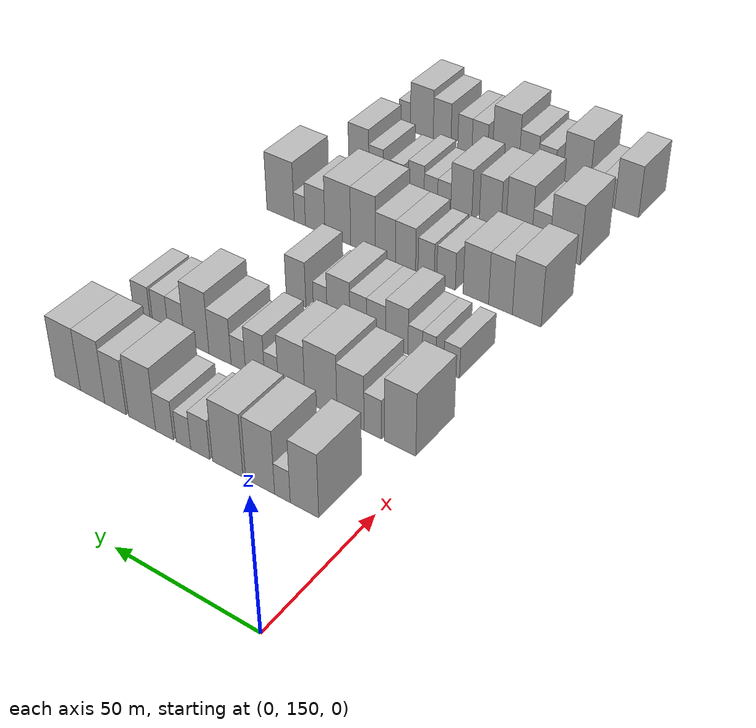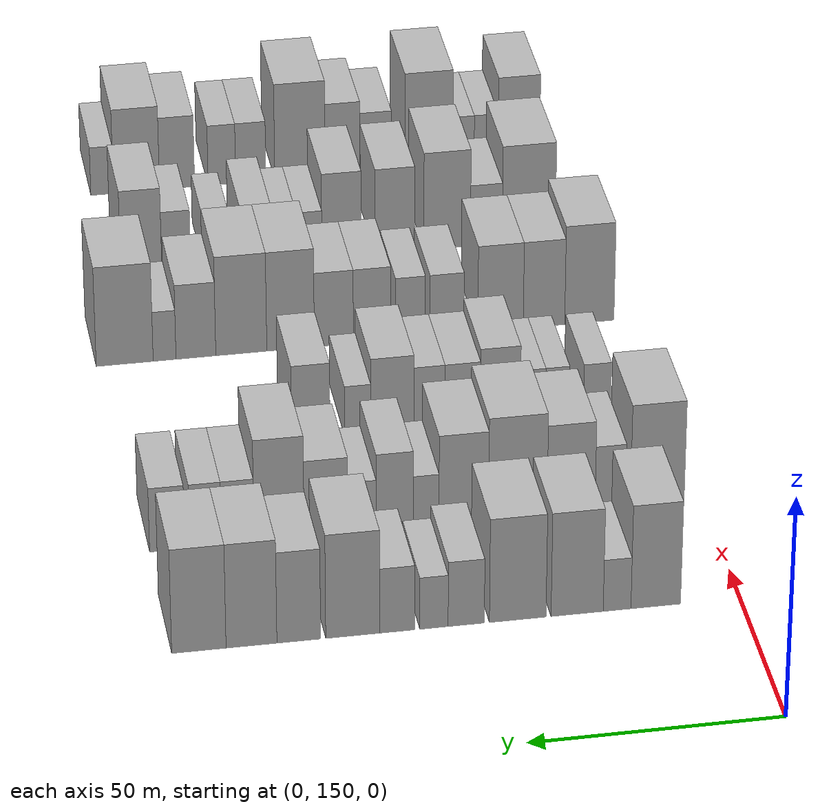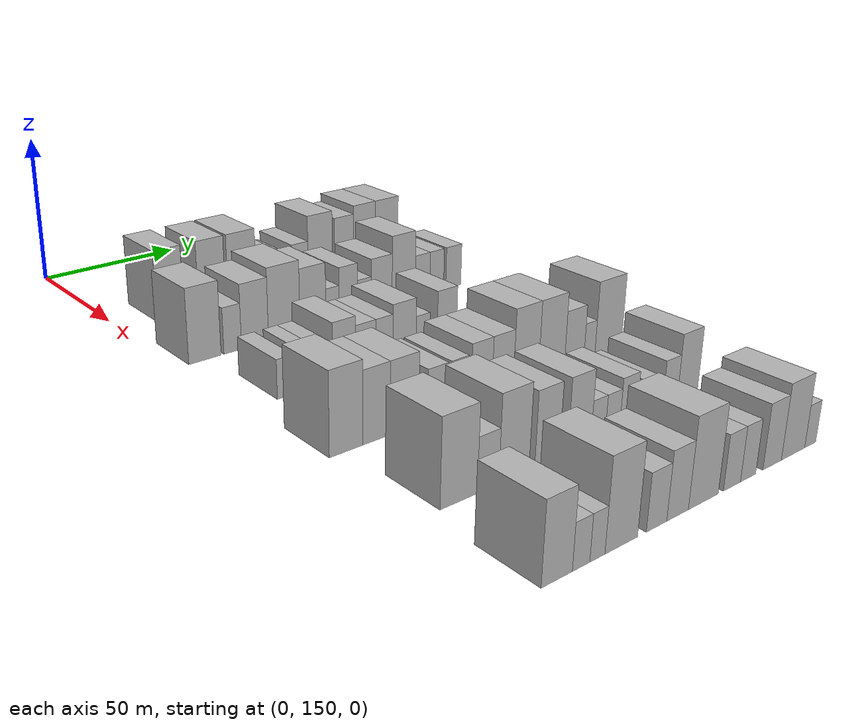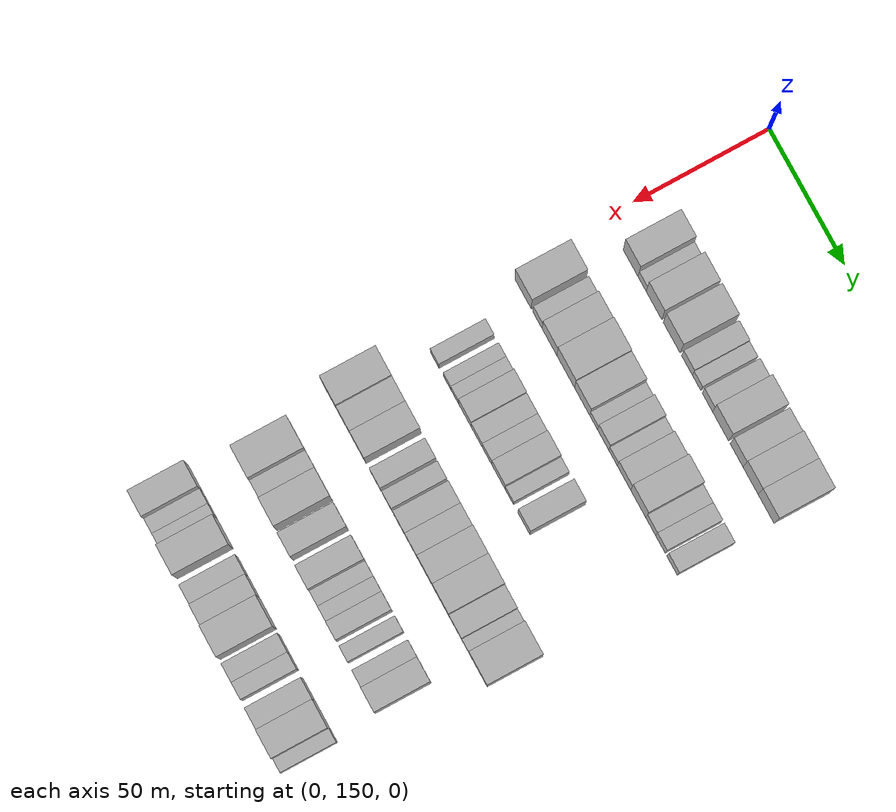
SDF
<sdf version="1.6">
 <world name="default">
  <model name="building_80">
   <static>1</static>
   <pose>50.0000 166.8273 0 0.000000 0.000000 0.000000</pose>
   <link name="link">
    <pose>0 0 12.00 0 0 0</pose>
    <collision name="collision"><geometry><box><size>20.0000 9.8591 24.0000</size></box></geometry></collision>
    <visual name="visual">
     <cast_shadows>0</cast_shadows>
     <geometry><box><size>20.0000 9.8591 24.0000</size></box></geometry>
     <material>
      <script>
       <uri>model://HANNAS_wall/materials/scripts</uri>
       <uri>model://HANNAS_wall/materials/textures</uri>
       <name>vrc/HANNAS_wall</name>
      </script>
     </material>
    </visual>
   </link>
  </model>
  <model name="building_81">
   <static>1</static>
   <pose>50.0000 174.5070 0 0.000000 0.000000 0.000000</pose>
   <link name="link">
    <pose>0 0 6.00 0 0 0</pose>
    <collision name="collision"><geometry><box><size>20.0000 5.5002 12.0000</size></box></geometry></collision>
    <visual name="visual">
     <cast_shadows>0</cast_shadows>
     <geometry><box><size>20.0000 5.5002 12.0000</size></box></geometry>
     <material>
      <script>
       <uri>model://HANNAS_wall/materials/scripts</uri>
       <uri>model://HANNAS_wall/materials/textures</uri>
       <name>vrc/HANNAS_wall</name>
      </script>
     </material>
    </visual>
   </link>
  </model>
  <model name="building_82">
   <static>1</static>
   <pose>50.0000 182.4204 0 0.000000 0.000000 0.000000</pose>
   <link name="link">
    <pose>0 0 12.00 0 0 0</pose>
    <collision name="collision"><geometry><box><size>20.0000 10.3265 24.0000</size></box></geometry></collision>
    <visual name="visual">
     <cast_shadows>0</cast_shadows>
     <geometry><box><size>20.0000 10.3265 24.0000</size></box></geometry>
     <material>
      <script>
       <uri>model://HANNAS_wall/materials/scripts</uri>
       <uri>model://HANNAS_wall/materials/textures</uri>
       <name>vrc/HANNAS_wall</name>
      </script>
     </material>
    </visual>
   </link>
  </model>
  <model name="building_83">
   <static>1</static>
   <pose>50.0000 194.1700 0 0.000000 0.000000 0.000000</pose>
   <link name="link">
    <pose>0 0 12.00 0 0 0</pose>
    <collision name="collision"><geometry><box><size>20.0000 11.1727 24.0000</size></box></geometry></collision>
    <visual name="visual">
     <cast_shadows>0</cast_shadows>
     <geometry><box><size>20.0000 11.1727 24.0000</size></box></geometry>
     <material>
      <script>
       <uri>model://HANNAS_wall/materials/scripts</uri>
       <uri>model://HANNAS_wall/materials/textures</uri>
       <name>vrc/HANNAS_wall</name>
      </script>
     </material>
    </visual>
   </link>
  </model>
  <model name="building_84">
   <static>1</static>
   <pose>50.0000 204.3230 0 0.000000 0.000000 0.000000</pose>
   <link name="link">
    <pose>0 0 7.50 0 0 0</pose>
    <collision name="collision"><geometry><box><size>20.0000 7.1332 15.0000</size></box></geometry></collision>
    <visual name="visual">
     <cast_shadows>0</cast_shadows>
     <geometry><box><size>20.0000 7.1332 15.0000</size></box></geometry>
     <material>
      <script>
       <uri>model://HANNAS_wall/materials/scripts</uri>
       <uri>model://HANNAS_wall/materials/textures</uri>
       <name>vrc/HANNAS_wall</name>
      </script>
     </material>
    </visual>
   </link>
  </model>
  <model name="building_85">
   <static>1</static>
   <pose>50.0000 210.6732 0 0.000000 0.000000 0.000000</pose>
   <link name="link">
    <pose>0 0 6.00 0 0 0</pose>
    <collision name="collision"><geometry><box><size>20.0000 5.5672 12.0000</size></box></geometry></collision>
    <visual name="visual">
     <cast_shadows>0</cast_shadows>
     <geometry><box><size>20.0000 5.5672 12.0000</size></box></geometry>
     <material>
      <script>
       <uri>model://HANNAS_wall/materials/scripts</uri>
       <uri>model://HANNAS_wall/materials/textures</uri>
       <name>vrc/HANNAS_wall</name>
      </script>
     </material>
    </visual>
   </link>
  </model>
  <model name="building_86">
   <static>1</static>
   <pose>50.0000 217.8794 0 0.000000 0.000000 0.000000</pose>
   <link name="link">
    <pose>0 0 7.50 0 0 0</pose>
    <collision name="collision"><geometry><box><size>20.0000 6.8454 15.0000</size></box></geometry></collision>
    <visual name="visual">
     <cast_shadows>0</cast_shadows>
     <geometry><box><size>20.0000 6.8454 15.0000</size></box></geometry>
     <material>
      <script>
       <uri>model://HANNAS_wall/materials/scripts</uri>
       <uri>model://HANNAS_wall/materials/textures</uri>
       <name>vrc/HANNAS_wall</name>
      </script>
     </material>
    </visual>
   </link>
  </model>
  <model name="building_87">
   <static>1</static>
   <pose>50.0000 226.5905 0 0.000000 0.000000 0.000000</pose>
   <link name="link">
    <pose>0 0 12.00 0 0 0</pose>
    <collision name="collision"><geometry><box><size>20.0000 10.5768 24.0000</size></box></geometry></collision>
    <visual name="visual">
     <cast_shadows>0</cast_shadows>
     <geometry><box><size>20.0000 10.5768 24.0000</size></box></geometry>
     <material>
      <script>
       <uri>model://HANNAS_wall/materials/scripts</uri>
       <uri>model://HANNAS_wall/materials/textures</uri>
       <name>vrc/HANNAS_wall</name>
      </script>
     </material>
    </visual>
   </link>
  </model>
  <model name="building_88">
   <static>1</static>
   <pose>50.0000 237.1452 0 0.000000 0.000000 0.000000</pose>
   <link name="link">
    <pose>0 0 10.50 0 0 0</pose>
    <collision name="collision"><geometry><box><size>20.0000 8.5326 21.0000</size></box></geometry></collision>
    <visual name="visual">
     <cast_shadows>0</cast_shadows>
     <geometry><box><size>20.0000 8.5326 21.0000</size></box></geometry>
     <material>
      <script>
       <uri>model://HANNAS_wall/materials/scripts</uri>
       <uri>model://HANNAS_wall/materials/textures</uri>
       <name>vrc/HANNAS_wall</name>
      </script>
     </material>
    </visual>
   </link>
  </model>
  <model name="building_89">
   <static>1</static>
   <pose>50.0000 246.3633 0 0.000000 0.000000 0.000000</pose>
   <link name="link">
    <pose>0 0 12.00 0 0 0</pose>
    <collision name="collision"><geometry><box><size>20.0000 9.9037 24.0000</size></box></geometry></collision>
    <visual name="visual">
     <cast_shadows>0</cast_shadows>
     <geometry><box><size>20.0000 9.9037 24.0000</size></box></geometry>
     <material>
      <script>
       <uri>model://HANNAS_wall/materials/scripts</uri>
       <uri>model://HANNAS_wall/materials/textures</uri>
       <name>vrc/HANNAS_wall</name>
      </script>
     </material>
    </visual>
   </link>
  </model>
  <model name="building_90">
   <static>1</static>
   <pose>50.0000 256.5942 0 0.000000 0.000000 0.000000</pose>
   <link name="link">
    <pose>0 0 12.00 0 0 0</pose>
    <collision name="collision"><geometry><box><size>20.0000 10.5582 24.0000</size></box></geometry></collision>
    <visual name="visual">
     <cast_shadows>0</cast_shadows>
     <geometry><box><size>20.0000 10.5582 24.0000</size></box></geometry>
     <material>
      <script>
       <uri>model://HANNAS_wall/materials/scripts</uri>
       <uri>model://HANNAS_wall/materials/textures</uri>
       <name>vrc/HANNAS_wall</name>
      </script>
     </material>
    </visual>
   </link>
  </model>
  <model name="building_200">
   <static>1</static>
   <pose>85.0000 159.1808 0 0.000000 0.000000 0.000000</pose>
   <link name="link">
    <pose>0 0 12.00 0 0 0</pose>
    <collision name="collision"><geometry><box><size>20.0000 11.0028 24.0000</size></box></geometry></collision>
    <visual name="visual">
     <cast_shadows>0</cast_shadows>
     <geometry><box><size>20.0000 11.0028 24.0000</size></box></geometry>
     <material>
      <script>
       <uri>model://HANNAS_wall/materials/scripts</uri>
       <uri>model://HANNAS_wall/materials/textures</uri>
       <name>vrc/HANNAS_wall</name>
      </script>
     </material>
    </visual>
   </link>
  </model>
  <model name="building_201">
   <static>1</static>
   <pose>85.0000 168.7923 0 0.000000 0.000000 0.000000</pose>
   <link name="link">
    <pose>0 0 7.50 0 0 0</pose>
    <collision name="collision"><geometry><box><size>20.0000 6.2203 15.0000</size></box></geometry></collision>
    <visual name="visual">
     <cast_shadows>0</cast_shadows>
     <geometry><box><size>20.0000 6.2203 15.0000</size></box></geometry>
     <material>
      <script>
       <uri>model://HANNAS_wall/materials/scripts</uri>
       <uri>model://HANNAS_wall/materials/textures</uri>
       <name>vrc/HANNAS_wall</name>
      </script>
     </material>
    </visual>
   </link>
  </model>
  <model name="building_202">
   <static>1</static>
   <pose>85.0000 176.7873 0 0.000000 0.000000 0.000000</pose>
   <link name="link">
    <pose>0 0 10.50 0 0 0</pose>
    <collision name="collision"><geometry><box><size>20.0000 9.7696 21.0000</size></box></geometry></collision>
    <visual name="visual">
     <cast_shadows>0</cast_shadows>
     <geometry><box><size>20.0000 9.7696 21.0000</size></box></geometry>
     <material>
      <script>
       <uri>model://HANNAS_wall/materials/scripts</uri>
       <uri>model://HANNAS_wall/materials/textures</uri>
       <name>vrc/HANNAS_wall</name>
      </script>
     </material>
    </visual>
   </link>
  </model>
  <model name="building_203">
   <static>1</static>
   <pose>85.0000 187.6029 0 0.000000 0.000000 0.000000</pose>
   <link name="link">
    <pose>0 0 12.00 0 0 0</pose>
    <collision name="collision"><geometry><box><size>20.0000 11.8616 24.0000</size></box></geometry></collision>
    <visual name="visual">
     <cast_shadows>0</cast_shadows>
     <geometry><box><size>20.0000 11.8616 24.0000</size></box></geometry>
     <material>
      <script>
       <uri>model://HANNAS_wall/materials/scripts</uri>
       <uri>model://HANNAS_wall/materials/textures</uri>
       <name>vrc/HANNAS_wall</name>
      </script>
     </material>
    </visual>
   </link>
  </model>
  <model name="building_204">
   <static>1</static>
   <pose>85.0000 198.5541 0 0.000000 0.000000 0.000000</pose>
   <link name="link">
    <pose>0 0 10.50 0 0 0</pose>
    <collision name="collision"><geometry><box><size>20.0000 10.0409 21.0000</size></box></geometry></collision>
    <visual name="visual">
     <cast_shadows>0</cast_shadows>
     <geometry><box><size>20.0000 10.0409 21.0000</size></box></geometry>
     <material>
      <script>
       <uri>model://HANNAS_wall/materials/scripts</uri>
       <uri>model://HANNAS_wall/materials/textures</uri>
       <name>vrc/HANNAS_wall</name>
      </script>
     </material>
    </visual>
   </link>
  </model>
  <model name="building_205">
   <static>1</static>
   <pose>85.0000 206.1847 0 0.000000 0.000000 0.000000</pose>
   <link name="link">
    <pose>0 0 6.00 0 0 0</pose>
    <collision name="collision"><geometry><box><size>20.0000 5.2202 12.0000</size></box></geometry></collision>
    <visual name="visual">
     <cast_shadows>0</cast_shadows>
     <geometry><box><size>20.0000 5.2202 12.0000</size></box></geometry>
     <material>
      <script>
       <uri>model://HANNAS_wall/materials/scripts</uri>
       <uri>model://HANNAS_wall/materials/textures</uri>
       <name>vrc/HANNAS_wall</name>
      </script>
     </material>
    </visual>
   </link>
  </model>
  <model name="building_206">
   <static>1</static>
   <pose>85.0000 212.5248 0 0.000000 0.000000 0.000000</pose>
   <link name="link">
    <pose>0 0 9.00 0 0 0</pose>
    <collision name="collision"><geometry><box><size>20.0000 7.4601 18.0000</size></box></geometry></collision>
    <visual name="visual">
     <cast_shadows>0</cast_shadows>
     <geometry><box><size>20.0000 7.4601 18.0000</size></box></geometry>
     <material>
      <script>
       <uri>model://HANNAS_wall/materials/scripts</uri>
       <uri>model://HANNAS_wall/materials/textures</uri>
       <name>vrc/HANNAS_wall</name>
      </script>
     </material>
    </visual>
   </link>
  </model>
  <model name="building_207">
   <static>1</static>
   <pose>85.0000 219.0925 0 0.000000 0.000000 0.000000</pose>
   <link name="link">
    <pose>0 0 6.00 0 0 0</pose>
    <collision name="collision"><geometry><box><size>20.0000 5.6752 12.0000</size></box></geometry></collision>
    <visual name="visual">
     <cast_shadows>0</cast_shadows>
     <geometry><box><size>20.0000 5.6752 12.0000</size></box></geometry>
     <material>
      <script>
       <uri>model://HANNAS_wall/materials/scripts</uri>
       <uri>model://HANNAS_wall/materials/textures</uri>
       <name>vrc/HANNAS_wall</name>
      </script>
     </material>
    </visual>
   </link>
  </model>
  <model name="building_208">
   <static>1</static>
   <pose>85.0000 226.3395 0 0.000000 0.000000 0.000000</pose>
   <link name="link">
    <pose>0 0 9.00 0 0 0</pose>
    <collision name="collision"><geometry><box><size>20.0000 8.8188 18.0000</size></box></geometry></collision>
    <visual name="visual">
     <cast_shadows>0</cast_shadows>
     <geometry><box><size>20.0000 8.8188 18.0000</size></box></geometry>
     <material>
      <script>
       <uri>model://HANNAS_wall/materials/scripts</uri>
       <uri>model://HANNAS_wall/materials/textures</uri>
       <name>vrc/HANNAS_wall</name>
      </script>
     </material>
    </visual>
   </link>
  </model>
  <model name="building_209">
   <static>1</static>
   <pose>85.0000 235.7666 0 0.000000 0.000000 0.000000</pose>
   <link name="link">
    <pose>0 0 12.00 0 0 0</pose>
    <collision name="collision"><geometry><box><size>20.0000 10.0355 24.0000</size></box></geometry></collision>
    <visual name="visual">
     <cast_shadows>0</cast_shadows>
     <geometry><box><size>20.0000 10.0355 24.0000</size></box></geometry>
     <material>
      <script>
       <uri>model://HANNAS_wall/materials/scripts</uri>
       <uri>model://HANNAS_wall/materials/textures</uri>
       <name>vrc/HANNAS_wall</name>
      </script>
     </material>
    </visual>
   </link>
  </model>
  <model name="building_210">
   <static>1</static>
   <pose>85.0000 244.0580 0 0.000000 0.000000 0.000000</pose>
   <link name="link">
    <pose>0 0 7.50 0 0 0</pose>
    <collision name="collision"><geometry><box><size>20.0000 6.5473 15.0000</size></box></geometry></collision>
    <visual name="visual">
     <cast_shadows>0</cast_shadows>
     <geometry><box><size>20.0000 6.5473 15.0000</size></box></geometry>
     <material>
      <script>
       <uri>model://HANNAS_wall/materials/scripts</uri>
       <uri>model://HANNAS_wall/materials/textures</uri>
       <name>vrc/HANNAS_wall</name>
      </script>
     </material>
    </visual>
   </link>
  </model>
  <model name="building_211">
   <static>1</static>
   <pose>85.0000 250.5014 0 0.000000 0.000000 0.000000</pose>
   <link name="link">
    <pose>0 0 7.50 0 0 0</pose>
    <collision name="collision"><geometry><box><size>20.0000 6.3394 15.0000</size></box></geometry></collision>
    <visual name="visual">
     <cast_shadows>0</cast_shadows>
     <geometry><box><size>20.0000 6.3394 15.0000</size></box></geometry>
     <material>
      <script>
       <uri>model://HANNAS_wall/materials/scripts</uri>
       <uri>model://HANNAS_wall/materials/textures</uri>
       <name>vrc/HANNAS_wall</name>
      </script>
     </material>
    </visual>
   </link>
  </model>
  <model name="building_212">
   <static>1</static>
   <pose>85.0000 258.1674 0 0.000000 0.000000 0.000000</pose>
   <link name="link">
    <pose>0 0 7.50 0 0 0</pose>
    <collision name="collision"><geometry><box><size>20.0000 6.9926 15.0000</size></box></geometry></collision>
    <visual name="visual">
     <cast_shadows>0</cast_shadows>
     <geometry><box><size>20.0000 6.9926 15.0000</size></box></geometry>
     <material>
      <script>
       <uri>model://HANNAS_wall/materials/scripts</uri>
       <uri>model://HANNAS_wall/materials/textures</uri>
       <name>vrc/HANNAS_wall</name>
      </script>
     </material>
    </visual>
   </link>
  </model>
  <model name="building_332">
   <static>1</static>
   <pose>120.0000 164.4815 0 0.000000 0.000000 0.000000</pose>
   <link name="link">
    <pose>0 0 6.00 0 0 0</pose>
    <collision name="collision"><geometry><box><size>20.0000 5.7077 12.0000</size></box></geometry></collision>
    <visual name="visual">
     <cast_shadows>0</cast_shadows>
     <geometry><box><size>20.0000 5.7077 12.0000</size></box></geometry>
     <material>
      <script>
       <uri>model://HANNAS_wall/materials/scripts</uri>
       <uri>model://HANNAS_wall/materials/textures</uri>
       <name>vrc/HANNAS_wall</name>
      </script>
     </material>
    </visual>
   </link>
  </model>
  <model name="building_333">
   <static>1</static>
   <pose>120.0000 172.8154 0 0.000000 0.000000 0.000000</pose>
   <link name="link">
    <pose>0 0 6.00 0 0 0</pose>
    <collision name="collision"><geometry><box><size>20.0000 4.9602 12.0000</size></box></geometry></collision>
    <visual name="visual">
     <cast_shadows>0</cast_shadows>
     <geometry><box><size>20.0000 4.9602 12.0000</size></box></geometry>
     <material>
      <script>
       <uri>model://HANNAS_wall/materials/scripts</uri>
       <uri>model://HANNAS_wall/materials/textures</uri>
       <name>vrc/HANNAS_wall</name>
      </script>
     </material>
    </visual>
   </link>
  </model>
  <model name="building_334">
   <static>1</static>
   <pose>120.0000 177.9159 0 0.000000 0.000000 0.000000</pose>
   <link name="link">
    <pose>0 0 6.00 0 0 0</pose>
    <collision name="collision"><geometry><box><size>20.0000 5.2408 12.0000</size></box></geometry></collision>
    <visual name="visual">
     <cast_shadows>0</cast_shadows>
     <geometry><box><size>20.0000 5.2408 12.0000</size></box></geometry>
     <material>
      <script>
       <uri>model://HANNAS_wall/materials/scripts</uri>
       <uri>model://HANNAS_wall/materials/textures</uri>
       <name>vrc/HANNAS_wall</name>
      </script>
     </material>
    </visual>
   </link>
  </model>
  <model name="building_335">
   <static>1</static>
   <pose>120.0000 184.7091 0 0.000000 0.000000 0.000000</pose>
   <link name="link">
    <pose>0 0 9.00 0 0 0</pose>
    <collision name="collision"><geometry><box><size>20.0000 8.3456 18.0000</size></box></geometry></collision>
    <visual name="visual">
     <cast_shadows>0</cast_shadows>
     <geometry><box><size>20.0000 8.3456 18.0000</size></box></geometry>
     <material>
      <script>
       <uri>model://HANNAS_wall/materials/scripts</uri>
       <uri>model://HANNAS_wall/materials/textures</uri>
       <name>vrc/HANNAS_wall</name>
      </script>
     </material>
    </visual>
   </link>
  </model>
  <model name="building_336">
   <static>1</static>
   <pose>120.0000 192.5555 0 0.000000 0.000000 0.000000</pose>
   <link name="link">
    <pose>0 0 7.50 0 0 0</pose>
    <collision name="collision"><geometry><box><size>20.0000 7.3470 15.0000</size></box></geometry></collision>
    <visual name="visual">
     <cast_shadows>0</cast_shadows>
     <geometry><box><size>20.0000 7.3470 15.0000</size></box></geometry>
     <material>
      <script>
       <uri>model://HANNAS_wall/materials/scripts</uri>
       <uri>model://HANNAS_wall/materials/textures</uri>
       <name>vrc/HANNAS_wall</name>
      </script>
     </material>
    </visual>
   </link>
  </model>
  <model name="building_337">
   <static>1</static>
   <pose>120.0000 199.4302 0 0.000000 0.000000 0.000000</pose>
   <link name="link">
    <pose>0 0 7.50 0 0 0</pose>
    <collision name="collision"><geometry><box><size>20.0000 6.4024 15.0000</size></box></geometry></collision>
    <visual name="visual">
     <cast_shadows>0</cast_shadows>
     <geometry><box><size>20.0000 6.4024 15.0000</size></box></geometry>
     <material>
      <script>
       <uri>model://HANNAS_wall/materials/scripts</uri>
       <uri>model://HANNAS_wall/materials/textures</uri>
       <name>vrc/HANNAS_wall</name>
      </script>
     </material>
    </visual>
   </link>
  </model>
  <model name="building_338">
   <static>1</static>
   <pose>120.0000 207.1223 0 0.000000 0.000000 0.000000</pose>
   <link name="link">
    <pose>0 0 9.00 0 0 0</pose>
    <collision name="collision"><geometry><box><size>20.0000 8.9820 18.0000</size></box></geometry></collision>
    <visual name="visual">
     <cast_shadows>0</cast_shadows>
     <geometry><box><size>20.0000 8.9820 18.0000</size></box></geometry>
     <material>
      <script>
       <uri>model://HANNAS_wall/materials/scripts</uri>
       <uri>model://HANNAS_wall/materials/textures</uri>
       <name>vrc/HANNAS_wall</name>
      </script>
     </material>
    </visual>
   </link>
  </model>
  <model name="building_339">
   <static>1</static>
   <pose>120.0000 214.3320 0 0.000000 0.000000 0.000000</pose>
   <link name="link">
    <pose>0 0 6.00 0 0 0</pose>
    <collision name="collision"><geometry><box><size>20.0000 5.4373 12.0000</size></box></geometry></collision>
    <visual name="visual">
     <cast_shadows>0</cast_shadows>
     <geometry><box><size>20.0000 5.4373 12.0000</size></box></geometry>
     <material>
      <script>
       <uri>model://HANNAS_wall/materials/scripts</uri>
       <uri>model://HANNAS_wall/materials/textures</uri>
       <name>vrc/HANNAS_wall</name>
      </script>
     </material>
    </visual>
   </link>
  </model>
  <model name="building_340">
   <static>1</static>
   <pose>120.0000 224.0153 0 0.000000 0.000000 0.000000</pose>
   <link name="link">
    <pose>0 0 9.00 0 0 0</pose>
    <collision name="collision"><geometry><box><size>20.0000 7.9292 18.0000</size></box></geometry></collision>
    <visual name="visual">
     <cast_shadows>0</cast_shadows>
     <geometry><box><size>20.0000 7.9292 18.0000</size></box></geometry>
     <material>
      <script>
       <uri>model://HANNAS_wall/materials/scripts</uri>
       <uri>model://HANNAS_wall/materials/textures</uri>
       <name>vrc/HANNAS_wall</name>
      </script>
     </material>
    </visual>
   </link>
  </model>
  <model name="building_449">
   <static>1</static>
   <pose>155.0000 159.1328 0 0.000000 0.000000 0.000000</pose>
   <link name="link">
    <pose>0 0 12.00 0 0 0</pose>
    <collision name="collision"><geometry><box><size>20.0000 10.5945 24.0000</size></box></geometry></collision>
    <visual name="visual">
     <cast_shadows>0</cast_shadows>
     <geometry><box><size>20.0000 10.5945 24.0000</size></box></geometry>
     <material>
      <script>
       <uri>model://HANNAS_wall/materials/scripts</uri>
       <uri>model://HANNAS_wall/materials/textures</uri>
       <name>vrc/HANNAS_wall</name>
      </script>
     </material>
    </visual>
   </link>
  </model>
  <model name="building_450">
   <static>1</static>
   <pose>155.0000 168.8812 0 0.000000 0.000000 0.000000</pose>
   <link name="link">
    <pose>0 0 10.50 0 0 0</pose>
    <collision name="collision"><geometry><box><size>20.0000 8.9023 21.0000</size></box></geometry></collision>
    <visual name="visual">
     <cast_shadows>0</cast_shadows>
     <geometry><box><size>20.0000 8.9023 21.0000</size></box></geometry>
     <material>
      <script>
       <uri>model://HANNAS_wall/materials/scripts</uri>
       <uri>model://HANNAS_wall/materials/textures</uri>
       <name>vrc/HANNAS_wall</name>
      </script>
     </material>
    </visual>
   </link>
  </model>
  <model name="building_451">
   <static>1</static>
   <pose>155.0000 178.1895 0 0.000000 0.000000 0.000000</pose>
   <link name="link">
    <pose>0 0 10.50 0 0 0</pose>
    <collision name="collision"><geometry><box><size>20.0000 9.7144 21.0000</size></box></geometry></collision>
    <visual name="visual">
     <cast_shadows>0</cast_shadows>
     <geometry><box><size>20.0000 9.7144 21.0000</size></box></geometry>
     <material>
      <script>
       <uri>model://HANNAS_wall/materials/scripts</uri>
       <uri>model://HANNAS_wall/materials/textures</uri>
       <name>vrc/HANNAS_wall</name>
      </script>
     </material>
    </visual>
   </link>
  </model>
  <model name="building_452">
   <static>1</static>
   <pose>155.0000 189.6638 0 0.000000 0.000000 0.000000</pose>
   <link name="link">
    <pose>0 0 7.50 0 0 0</pose>
    <collision name="collision"><geometry><box><size>20.0000 7.2342 15.0000</size></box></geometry></collision>
    <visual name="visual">
     <cast_shadows>0</cast_shadows>
     <geometry><box><size>20.0000 7.2342 15.0000</size></box></geometry>
     <material>
      <script>
       <uri>model://HANNAS_wall/materials/scripts</uri>
       <uri>model://HANNAS_wall/materials/textures</uri>
       <name>vrc/HANNAS_wall</name>
      </script>
     </material>
    </visual>
   </link>
  </model>
  <model name="building_453">
   <static>1</static>
   <pose>155.0000 197.4546 0 0.000000 0.000000 0.000000</pose>
   <link name="link">
    <pose>0 0 7.50 0 0 0</pose>
    <collision name="collision"><geometry><box><size>20.0000 6.3474 15.0000</size></box></geometry></collision>
    <visual name="visual">
     <cast_shadows>0</cast_shadows>
     <geometry><box><size>20.0000 6.3474 15.0000</size></box></geometry>
     <material>
      <script>
       <uri>model://HANNAS_wall/materials/scripts</uri>
       <uri>model://HANNAS_wall/materials/textures</uri>
       <name>vrc/HANNAS_wall</name>
      </script>
     </material>
    </visual>
   </link>
  </model>
  <model name="building_454">
   <static>1</static>
   <pose>155.0000 205.6156 0 0.000000 0.000000 0.000000</pose>
   <link name="link">
    <pose>0 0 9.00 0 0 0</pose>
    <collision name="collision"><geometry><box><size>20.0000 7.9745 18.0000</size></box></geometry></collision>
    <visual name="visual">
     <cast_shadows>0</cast_shadows>
     <geometry><box><size>20.0000 7.9745 18.0000</size></box></geometry>
     <material>
      <script>
       <uri>model://HANNAS_wall/materials/scripts</uri>
       <uri>model://HANNAS_wall/materials/textures</uri>
       <name>vrc/HANNAS_wall</name>
      </script>
     </material>
    </visual>
   </link>
  </model>
  <model name="building_455">
   <static>1</static>
   <pose>155.0000 213.7483 0 0.000000 0.000000 0.000000</pose>
   <link name="link">
    <pose>0 0 9.00 0 0 0</pose>
    <collision name="collision"><geometry><box><size>20.0000 8.2910 18.0000</size></box></geometry></collision>
    <visual name="visual">
     <cast_shadows>0</cast_shadows>
     <geometry><box><size>20.0000 8.2910 18.0000</size></box></geometry>
     <material>
      <script>
       <uri>model://HANNAS_wall/materials/scripts</uri>
       <uri>model://HANNAS_wall/materials/textures</uri>
       <name>vrc/HANNAS_wall</name>
      </script>
     </material>
    </visual>
   </link>
  </model>
  <model name="building_456">
   <static>1</static>
   <pose>155.0000 222.9346 0 0.000000 0.000000 0.000000</pose>
   <link name="link">
    <pose>0 0 12.00 0 0 0</pose>
    <collision name="collision"><geometry><box><size>20.0000 10.0817 24.0000</size></box></geometry></collision>
    <visual name="visual">
     <cast_shadows>0</cast_shadows>
     <geometry><box><size>20.0000 10.0817 24.0000</size></box></geometry>
     <material>
      <script>
       <uri>model://HANNAS_wall/materials/scripts</uri>
       <uri>model://HANNAS_wall/materials/textures</uri>
       <name>vrc/HANNAS_wall</name>
      </script>
     </material>
    </visual>
   </link>
  </model>
  <model name="building_457">
   <static>1</static>
   <pose>155.0000 233.3695 0 0.000000 0.000000 0.000000</pose>
   <link name="link">
    <pose>0 0 12.00 0 0 0</pose>
    <collision name="collision"><geometry><box><size>20.0000 10.7880 24.0000</size></box></geometry></collision>
    <visual name="visual">
     <cast_shadows>0</cast_shadows>
     <geometry><box><size>20.0000 10.7880 24.0000</size></box></geometry>
     <material>
      <script>
       <uri>model://HANNAS_wall/materials/scripts</uri>
       <uri>model://HANNAS_wall/materials/textures</uri>
       <name>vrc/HANNAS_wall</name>
      </script>
     </material>
    </visual>
   </link>
  </model>
  <model name="building_458">
   <static>1</static>
   <pose>155.0000 242.9606 0 0.000000 0.000000 0.000000</pose>
   <link name="link">
    <pose>0 0 9.00 0 0 0</pose>
    <collision name="collision"><geometry><box><size>20.0000 8.3943 18.0000</size></box></geometry></collision>
    <visual name="visual">
     <cast_shadows>0</cast_shadows>
     <geometry><box><size>20.0000 8.3943 18.0000</size></box></geometry>
     <material>
      <script>
       <uri>model://HANNAS_wall/materials/scripts</uri>
       <uri>model://HANNAS_wall/materials/textures</uri>
       <name>vrc/HANNAS_wall</name>
      </script>
     </material>
    </visual>
   </link>
  </model>
  <model name="building_459">
   <static>1</static>
   <pose>155.0000 249.5626 0 0.000000 0.000000 0.000000</pose>
   <link name="link">
    <pose>0 0 6.00 0 0 0</pose>
    <collision name="collision"><geometry><box><size>20.0000 4.8097 12.0000</size></box></geometry></collision>
    <visual name="visual">
     <cast_shadows>0</cast_shadows>
     <geometry><box><size>20.0000 4.8097 12.0000</size></box></geometry>
     <material>
      <script>
       <uri>model://HANNAS_wall/materials/scripts</uri>
       <uri>model://HANNAS_wall/materials/textures</uri>
       <name>vrc/HANNAS_wall</name>
      </script>
     </material>
    </visual>
   </link>
  </model>
  <model name="building_460">
   <static>1</static>
   <pose>155.0000 257.9498 0 0.000000 0.000000 0.000000</pose>
   <link name="link">
    <pose>0 0 12.00 0 0 0</pose>
    <collision name="collision"><geometry><box><size>20.0000 11.9647 24.0000</size></box></geometry></collision>
    <visual name="visual">
     <cast_shadows>0</cast_shadows>
     <geometry><box><size>20.0000 11.9647 24.0000</size></box></geometry>
     <material>
      <script>
       <uri>model://HANNAS_wall/materials/scripts</uri>
       <uri>model://HANNAS_wall/materials/textures</uri>
       <name>vrc/HANNAS_wall</name>
      </script>
     </material>
    </visual>
   </link>
  </model>
  <model name="building_576">
   <static>1</static>
   <pose>190.0000 165.5408 0 0.000000 0.000000 0.000000</pose>
   <link name="link">
    <pose>0 0 12.00 0 0 0</pose>
    <collision name="collision"><geometry><box><size>20.0000 11.6809 24.0000</size></box></geometry></collision>
    <visual name="visual">
     <cast_shadows>0</cast_shadows>
     <geometry><box><size>20.0000 11.6809 24.0000</size></box></geometry>
     <material>
      <script>
       <uri>model://HANNAS_wall/materials/scripts</uri>
       <uri>model://HANNAS_wall/materials/textures</uri>
       <name>vrc/HANNAS_wall</name>
      </script>
     </material>
    </visual>
   </link>
  </model>
  <model name="building_577">
   <static>1</static>
   <pose>190.0000 174.8671 0 0.000000 0.000000 0.000000</pose>
   <link name="link">
    <pose>0 0 7.50 0 0 0</pose>
    <collision name="collision"><geometry><box><size>20.0000 6.9716 15.0000</size></box></geometry></collision>
    <visual name="visual">
     <cast_shadows>0</cast_shadows>
     <geometry><box><size>20.0000 6.9716 15.0000</size></box></geometry>
     <material>
      <script>
       <uri>model://HANNAS_wall/materials/scripts</uri>
       <uri>model://HANNAS_wall/materials/textures</uri>
       <name>vrc/HANNAS_wall</name>
      </script>
     </material>
    </visual>
   </link>
  </model>
  <model name="building_578">
   <static>1</static>
   <pose>190.0000 183.4590 0 0.000000 0.000000 0.000000</pose>
   <link name="link">
    <pose>0 0 12.00 0 0 0</pose>
    <collision name="collision"><geometry><box><size>20.0000 10.2122 24.0000</size></box></geometry></collision>
    <visual name="visual">
     <cast_shadows>0</cast_shadows>
     <geometry><box><size>20.0000 10.2122 24.0000</size></box></geometry>
     <material>
      <script>
       <uri>model://HANNAS_wall/materials/scripts</uri>
       <uri>model://HANNAS_wall/materials/textures</uri>
       <name>vrc/HANNAS_wall</name>
      </script>
     </material>
    </visual>
   </link>
  </model>
  <model name="building_579">
   <static>1</static>
   <pose>190.0000 194.9015 0 0.000000 0.000000 0.000000</pose>
   <link name="link">
    <pose>0 0 10.50 0 0 0</pose>
    <collision name="collision"><geometry><box><size>20.0000 8.6729 21.0000</size></box></geometry></collision>
    <visual name="visual">
     <cast_shadows>0</cast_shadows>
     <geometry><box><size>20.0000 8.6729 21.0000</size></box></geometry>
     <material>
      <script>
       <uri>model://HANNAS_wall/materials/scripts</uri>
       <uri>model://HANNAS_wall/materials/textures</uri>
       <name>vrc/HANNAS_wall</name>
      </script>
     </material>
    </visual>
   </link>
  </model>
  <model name="building_580">
   <static>1</static>
   <pose>190.0000 206.5405 0 0.000000 0.000000 0.000000</pose>
   <link name="link">
    <pose>0 0 10.50 0 0 0</pose>
    <collision name="collision"><geometry><box><size>20.0000 8.6051 21.0000</size></box></geometry></collision>
    <visual name="visual">
     <cast_shadows>0</cast_shadows>
     <geometry><box><size>20.0000 8.6051 21.0000</size></box></geometry>
     <material>
      <script>
       <uri>model://HANNAS_wall/materials/scripts</uri>
       <uri>model://HANNAS_wall/materials/textures</uri>
       <name>vrc/HANNAS_wall</name>
      </script>
     </material>
    </visual>
   </link>
  </model>
  <model name="building_581">
   <static>1</static>
   <pose>190.0000 213.5947 0 0.000000 0.000000 0.000000</pose>
   <link name="link">
    <pose>0 0 6.00 0 0 0</pose>
    <collision name="collision"><geometry><box><size>20.0000 5.5034 12.0000</size></box></geometry></collision>
    <visual name="visual">
     <cast_shadows>0</cast_shadows>
     <geometry><box><size>20.0000 5.5034 12.0000</size></box></geometry>
     <material>
      <script>
       <uri>model://HANNAS_wall/materials/scripts</uri>
       <uri>model://HANNAS_wall/materials/textures</uri>
       <name>vrc/HANNAS_wall</name>
      </script>
     </material>
    </visual>
   </link>
  </model>
  <model name="building_582">
   <static>1</static>
   <pose>190.0000 219.1603 0 0.000000 0.000000 0.000000</pose>
   <link name="link">
    <pose>0 0 6.00 0 0 0</pose>
    <collision name="collision"><geometry><box><size>20.0000 5.6277 12.0000</size></box></geometry></collision>
    <visual name="visual">
     <cast_shadows>0</cast_shadows>
     <geometry><box><size>20.0000 5.6277 12.0000</size></box></geometry>
     <material>
      <script>
       <uri>model://HANNAS_wall/materials/scripts</uri>
       <uri>model://HANNAS_wall/materials/textures</uri>
       <name>vrc/HANNAS_wall</name>
      </script>
     </material>
    </visual>
   </link>
  </model>
  <model name="building_583">
   <static>1</static>
   <pose>190.0000 225.2955 0 0.000000 0.000000 0.000000</pose>
   <link name="link">
    <pose>0 0 7.50 0 0 0</pose>
    <collision name="collision"><geometry><box><size>20.0000 6.6427 15.0000</size></box></geometry></collision>
    <visual name="visual">
     <cast_shadows>0</cast_shadows>
     <geometry><box><size>20.0000 6.6427 15.0000</size></box></geometry>
     <material>
      <script>
       <uri>model://HANNAS_wall/materials/scripts</uri>
       <uri>model://HANNAS_wall/materials/textures</uri>
       <name>vrc/HANNAS_wall</name>
      </script>
     </material>
    </visual>
   </link>
  </model>
  <model name="building_584">
   <static>1</static>
   <pose>190.0000 233.4804 0 0.000000 0.000000 0.000000</pose>
   <link name="link">
    <pose>0 0 6.00 0 0 0</pose>
    <collision name="collision"><geometry><box><size>20.0000 5.7271 12.0000</size></box></geometry></collision>
    <visual name="visual">
     <cast_shadows>0</cast_shadows>
     <geometry><box><size>20.0000 5.7271 12.0000</size></box></geometry>
     <material>
      <script>
       <uri>model://HANNAS_wall/materials/scripts</uri>
       <uri>model://HANNAS_wall/materials/textures</uri>
       <name>vrc/HANNAS_wall</name>
      </script>
     </material>
    </visual>
   </link>
  </model>
  <model name="building_585">
   <static>1</static>
   <pose>190.0000 242.4651 0 0.000000 0.000000 0.000000</pose>
   <link name="link">
    <pose>0 0 7.50 0 0 0</pose>
    <collision name="collision"><geometry><box><size>20.0000 6.2423 15.0000</size></box></geometry></collision>
    <visual name="visual">
     <cast_shadows>0</cast_shadows>
     <geometry><box><size>20.0000 6.2423 15.0000</size></box></geometry>
     <material>
      <script>
       <uri>model://HANNAS_wall/materials/scripts</uri>
       <uri>model://HANNAS_wall/materials/textures</uri>
       <name>vrc/HANNAS_wall</name>
      </script>
     </material>
    </visual>
   </link>
  </model>
  <model name="building_586">
   <static>1</static>
   <pose>190.0000 250.0035 0 0.000000 0.000000 0.000000</pose>
   <link name="link">
    <pose>0 0 10.50 0 0 0</pose>
    <collision name="collision"><geometry><box><size>20.0000 8.8345 21.0000</size></box></geometry></collision>
    <visual name="visual">
     <cast_shadows>0</cast_shadows>
     <geometry><box><size>20.0000 8.8345 21.0000</size></box></geometry>
     <material>
      <script>
       <uri>model://HANNAS_wall/materials/scripts</uri>
       <uri>model://HANNAS_wall/materials/textures</uri>
       <name>vrc/HANNAS_wall</name>
      </script>
     </material>
    </visual>
   </link>
  </model>
  <model name="building_700">
   <static>1</static>
   <pose>225.0000 161.1523 0 0.000000 0.000000 0.000000</pose>
   <link name="link">
    <pose>0 0 10.50 0 0 0</pose>
    <collision name="collision"><geometry><box><size>20.0000 9.3493 21.0000</size></box></geometry></collision>
    <visual name="visual">
     <cast_shadows>0</cast_shadows>
     <geometry><box><size>20.0000 9.3493 21.0000</size></box></geometry>
     <material>
      <script>
       <uri>model://HANNAS_wall/materials/scripts</uri>
       <uri>model://HANNAS_wall/materials/textures</uri>
       <name>vrc/HANNAS_wall</name>
      </script>
     </material>
    </visual>
   </link>
  </model>
  <model name="building_701">
   <static>1</static>
   <pose>225.0000 168.5351 0 0.000000 0.000000 0.000000</pose>
   <link name="link">
    <pose>0 0 6.00 0 0 0</pose>
    <collision name="collision"><geometry><box><size>20.0000 5.4164 12.0000</size></box></geometry></collision>
    <visual name="visual">
     <cast_shadows>0</cast_shadows>
     <geometry><box><size>20.0000 5.4164 12.0000</size></box></geometry>
     <material>
      <script>
       <uri>model://HANNAS_wall/materials/scripts</uri>
       <uri>model://HANNAS_wall/materials/textures</uri>
       <name>vrc/HANNAS_wall</name>
      </script>
     </material>
    </visual>
   </link>
  </model>
  <model name="building_702">
   <static>1</static>
   <pose>225.0000 173.6454 0 0.000000 0.000000 0.000000</pose>
   <link name="link">
    <pose>0 0 6.00 0 0 0</pose>
    <collision name="collision"><geometry><box><size>20.0000 4.8042 12.0000</size></box></geometry></collision>
    <visual name="visual">
     <cast_shadows>0</cast_shadows>
     <geometry><box><size>20.0000 4.8042 12.0000</size></box></geometry>
     <material>
      <script>
       <uri>model://HANNAS_wall/materials/scripts</uri>
       <uri>model://HANNAS_wall/materials/textures</uri>
       <name>vrc/HANNAS_wall</name>
      </script>
     </material>
    </visual>
   </link>
  </model>
  <model name="building_703">
   <static>1</static>
   <pose>225.0000 181.4263 0 0.000000 0.000000 0.000000</pose>
   <link name="link">
    <pose>0 0 12.00 0 0 0</pose>
    <collision name="collision"><geometry><box><size>20.0000 10.7575 24.0000</size></box></geometry></collision>
    <visual name="visual">
     <cast_shadows>0</cast_shadows>
     <geometry><box><size>20.0000 10.7575 24.0000</size></box></geometry>
     <material>
      <script>
       <uri>model://HANNAS_wall/materials/scripts</uri>
       <uri>model://HANNAS_wall/materials/textures</uri>
       <name>vrc/HANNAS_wall</name>
      </script>
     </material>
    </visual>
   </link>
  </model>
  <model name="building_704">
   <static>1</static>
   <pose>225.0000 193.3549 0 0.000000 0.000000 0.000000</pose>
   <link name="link">
    <pose>0 0 7.50 0 0 0</pose>
    <collision name="collision"><geometry><box><size>20.0000 7.0997 15.0000</size></box></geometry></collision>
    <visual name="visual">
     <cast_shadows>0</cast_shadows>
     <geometry><box><size>20.0000 7.0997 15.0000</size></box></geometry>
     <material>
      <script>
       <uri>model://HANNAS_wall/materials/scripts</uri>
       <uri>model://HANNAS_wall/materials/textures</uri>
       <name>vrc/HANNAS_wall</name>
      </script>
     </material>
    </visual>
   </link>
  </model>
  <model name="building_705">
   <static>1</static>
   <pose>225.0000 200.7986 0 0.000000 0.000000 0.000000</pose>
   <link name="link">
    <pose>0 0 9.00 0 0 0</pose>
    <collision name="collision"><geometry><box><size>20.0000 7.7877 18.0000</size></box></geometry></collision>
    <visual name="visual">
     <cast_shadows>0</cast_shadows>
     <geometry><box><size>20.0000 7.7877 18.0000</size></box></geometry>
     <material>
      <script>
       <uri>model://HANNAS_wall/materials/scripts</uri>
       <uri>model://HANNAS_wall/materials/textures</uri>
       <name>vrc/HANNAS_wall</name>
      </script>
     </material>
    </visual>
   </link>
  </model>
  <model name="building_706">
   <static>1</static>
   <pose>225.0000 210.3026 0 0.000000 0.000000 0.000000</pose>
   <link name="link">
    <pose>0 0 12.00 0 0 0</pose>
    <collision name="collision"><geometry><box><size>20.0000 11.2204 24.0000</size></box></geometry></collision>
    <visual name="visual">
     <cast_shadows>0</cast_shadows>
     <geometry><box><size>20.0000 11.2204 24.0000</size></box></geometry>
     <material>
      <script>
       <uri>model://HANNAS_wall/materials/scripts</uri>
       <uri>model://HANNAS_wall/materials/textures</uri>
       <name>vrc/HANNAS_wall</name>
      </script>
     </material>
    </visual>
   </link>
  </model>
  <model name="building_707">
   <static>1</static>
   <pose>225.0000 221.2756 0 0.000000 0.000000 0.000000</pose>
   <link name="link">
    <pose>0 0 7.50 0 0 0</pose>
    <collision name="collision"><geometry><box><size>20.0000 6.7255 15.0000</size></box></geometry></collision>
    <visual name="visual">
     <cast_shadows>0</cast_shadows>
     <geometry><box><size>20.0000 6.7255 15.0000</size></box></geometry>
     <material>
      <script>
       <uri>model://HANNAS_wall/materials/scripts</uri>
       <uri>model://HANNAS_wall/materials/textures</uri>
       <name>vrc/HANNAS_wall</name>
      </script>
     </material>
    </visual>
   </link>
  </model>
  <model name="building_708">
   <static>1</static>
   <pose>225.0000 227.7055 0 0.000000 0.000000 0.000000</pose>
   <link name="link">
    <pose>0 0 7.50 0 0 0</pose>
    <collision name="collision"><geometry><box><size>20.0000 6.1344 15.0000</size></box></geometry></collision>
    <visual name="visual">
     <cast_shadows>0</cast_shadows>
     <geometry><box><size>20.0000 6.1344 15.0000</size></box></geometry>
     <material>
      <script>
       <uri>model://HANNAS_wall/materials/scripts</uri>
       <uri>model://HANNAS_wall/materials/textures</uri>
       <name>vrc/HANNAS_wall</name>
      </script>
     </material>
    </visual>
   </link>
  </model>
  <model name="building_709">
   <static>1</static>
   <pose>225.0000 237.6635 0 0.000000 0.000000 0.000000</pose>
   <link name="link">
    <pose>0 0 9.00 0 0 0</pose>
    <collision name="collision"><geometry><box><size>20.0000 7.7816 18.0000</size></box></geometry></collision>
    <visual name="visual">
     <cast_shadows>0</cast_shadows>
     <geometry><box><size>20.0000 7.7816 18.0000</size></box></geometry>
     <material>
      <script>
       <uri>model://HANNAS_wall/materials/scripts</uri>
       <uri>model://HANNAS_wall/materials/textures</uri>
       <name>vrc/HANNAS_wall</name>
      </script>
     </material>
    </visual>
   </link>
  </model>
  <model name="building_710">
   <static>1</static>
   <pose>225.0000 246.6580 0 0.000000 0.000000 0.000000</pose>
   <link name="link">
    <pose>0 0 10.50 0 0 0</pose>
    <collision name="collision"><geometry><box><size>20.0000 10.2074 21.0000</size></box></geometry></collision>
    <visual name="visual">
     <cast_shadows>0</cast_shadows>
     <geometry><box><size>20.0000 10.2074 21.0000</size></box></geometry>
     <material>
      <script>
       <uri>model://HANNAS_wall/materials/scripts</uri>
       <uri>model://HANNAS_wall/materials/textures</uri>
       <name>vrc/HANNAS_wall</name>
      </script>
     </material>
    </visual>
   </link>
  </model>
  <model name="building_711">
   <static>1</static>
   <pose>225.0000 254.2560 0 0.000000 0.000000 0.000000</pose>
   <link name="link">
    <pose>0 0 6.00 0 0 0</pose>
    <collision name="collision"><geometry><box><size>20.0000 4.9885 12.0000</size></box></geometry></collision>
    <visual name="visual">
     <cast_shadows>0</cast_shadows>
     <geometry><box><size>20.0000 4.9885 12.0000</size></box></geometry>
     <material>
      <script>
       <uri>model://HANNAS_wall/materials/scripts</uri>
       <uri>model://HANNAS_wall/materials/textures</uri>
       <name>vrc/HANNAS_wall</name>
      </script>
     </material>
    </visual>
   </link>
  </model>
 </world>
</sdf>
